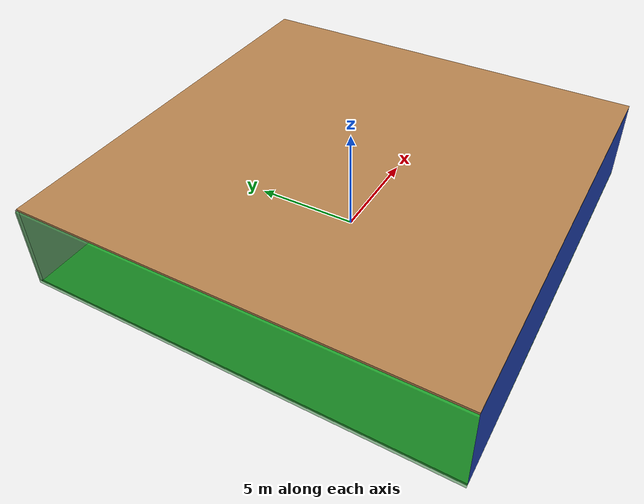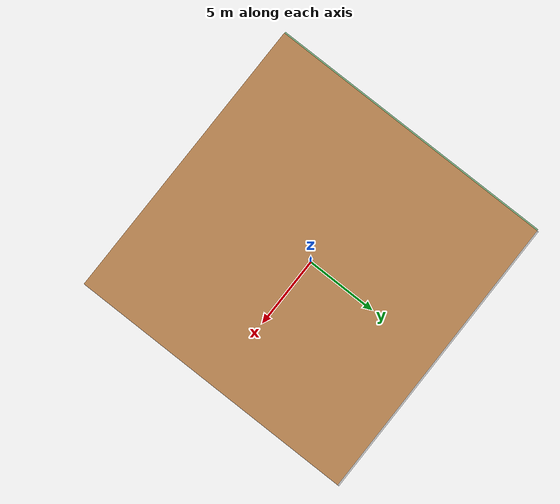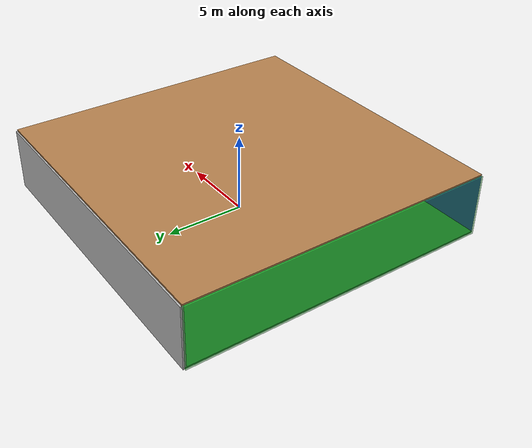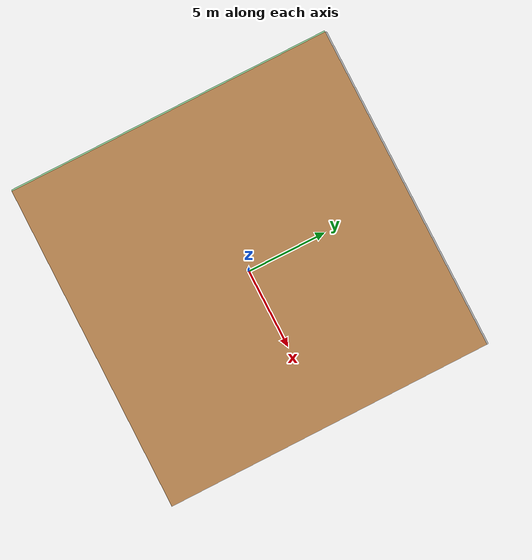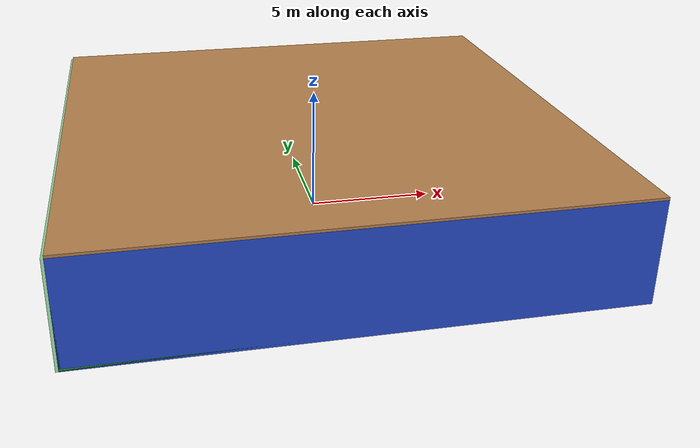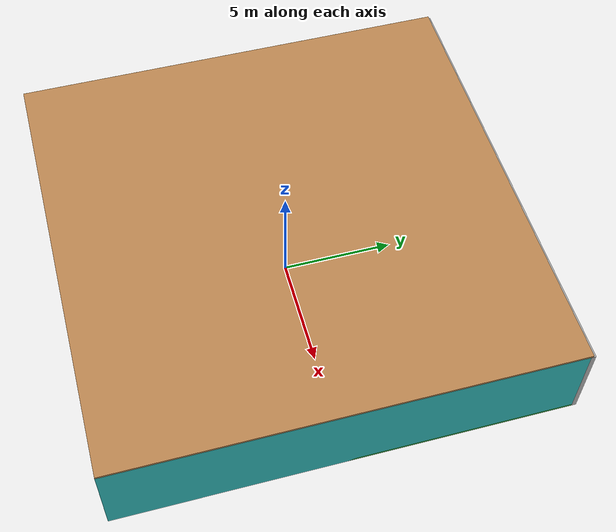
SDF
<sdf version="1.4">
 <world name="default">
  <physics type="ode">
   <max_step_size>0.001</max_step_size>
   <real_time_factor>1</real_time_factor>
   <real_time_update_rate>1000</real_time_update_rate>
   <gravity>0 0 -9.8</gravity>
  </physics>
  <scene><ambient>0.4 0.4 0.4 1</ambient><background>0.7 0.7 0.7 1</background><shadows>1</shadows></scene>
  <model name="Surrounding">
   <static>1</static>
   <link name="Ceiling">
    <collision name="Ceiling_Collision"><geometry><box><size>20 20 0.1</size></box></geometry></collision>
    <visual name="Ceiling_Visual">
     <geometry><box><size>20 20 0.1</size></box></geometry>
     <material>
      <script><uri>file://media/materials/scripts/gazebo.material</uri><name>Gazebo/WoodPallet</name></script>
     </material>
    </visual>
    <pose>0 0 4.05 0 0 0</pose>
   </link>
   <link name="Wall_South">
    <collision name="Wall_South_Collision">
     <geometry><box><size>20 0 4</size></box></geometry>
     <pose>0 0 2 0 -0 0</pose>
    </collision>
    <visual name="Wall_South_Visual">
     <pose>0 0 2 0 -0 0</pose>
     <geometry><box><size>20 0 4</size></box></geometry>
     <material>
      <script><uri>file://media/materials/scripts/gazebo.material</uri><name>Gazebo/Blue</name></script>
     </material>
    </visual>
    <velocity_decay><linear>0</linear><angular>0</angular></velocity_decay>
    <pose>0 -10 0 0 -0 0</pose>
   </link>
   <link name="Wall_East">
    <collision name="Wall_21_Collision">
     <geometry><box><size>20 0 4</size></box></geometry>
     <pose>0 0 2 0 -0 0</pose>
    </collision>
    <visual name="Wall_21_Visual">
     <pose>0 0 2 0 -0 0</pose>
     <geometry><box><size>20 0 4</size></box></geometry>
     <material>
      <script><uri>file://media/materials/scripts/gazebo.material</uri><name>Gazebo/TurquoiseGlow</name></script>
     </material>
    </visual>
    <velocity_decay><linear>0</linear><angular>0</angular></velocity_decay>
    <pose>10 0 0 0 -0 1.5708</pose>
   </link>
   <link name="Wall_North">
    <collision name="Wall_22_Collision">
     <geometry><box><size>20 0.2 4</size></box></geometry>
     <pose>0 0 2 0 -0 0</pose>
    </collision>
    <visual name="Wall_22_Visual">
     <pose>0 0 2 0 -0 0</pose>
     <geometry><box><size>20 0.2 4</size></box></geometry>
     <material>
      <script><uri>file://media/materials/scripts/gazebo.material</uri><name>Gazebo/LightOn</name></script>
     </material>
    </visual>
    <velocity_decay><linear>0</linear><angular>0</angular></velocity_decay>
    <pose>0 10 0 0 -0 0</pose>
   </link>
   <link name="Wall_West">
    <collision name="Wall_23_Collision">
     <geometry><box><size>20 0.2 4</size></box></geometry>
     <pose>0 0 2 0 -0 0</pose>
    </collision>
    <visual name="Wall_23_Visual">
     <pose>0 0 2 0 -0 0</pose>
     <geometry><box><size>20 0.2 4</size></box></geometry>
     <material>
      <script><uri>file://media/materials/scripts/gazebo.material</uri><name>Gazebo/GreenTransparent</name></script>
     </material>
    </visual>
    <velocity_decay><linear>0</linear><angular>0</angular></velocity_decay>
    <pose>-10 0 0 0 0 -1.5708</pose>
   </link>
   <link name="Ground_link">
    <collision name="collision">
     <pose>0 0 .05 0 -0 0</pose>
     <geometry><box><size>20 20 0.1</size></box></geometry>
    </collision>
    <visual name="visual">
     <pose>0 0 .05 0 -0 0</pose>
     <geometry><box><size>20 20 0.1</size></box></geometry>
     <material>
      <script><uri>file://media/materials/scripts/gazebo.material</uri><name>Gazebo/Green</name></script>
     </material>
    </visual>
   </link>
   <static>1</static>
  </model>
  <spherical_coordinates>
   <surface_model>EARTH_WGS84</surface_model>
   <latitude_deg>0</latitude_deg>
   <longitude_deg>0</longitude_deg>
   <elevation>0</elevation>
   <heading_deg>0</heading_deg>
  </spherical_coordinates>
  <light name="lightball_0" type="diffuse">
   <diffuse>0.8 0.8 0.8 1</diffuse>
   <specular>0.2 0.2 0.2 1</specular>
   <attenuation>
    <range>100</range>
    <constant>0.7</constant>
    <linear>0.01</linear>
    <quadratic>0.001</quadratic>
   </attenuation>
   <direction>-0.5 0.1 -0.9</direction>
   <pose>-4.00094960718 0.57420503855 1.16253418057 0 0 0</pose>
  </light>
  <light name="lightball_1" type="diffuse">
   <diffuse>0.8 0.8 0.8 1</diffuse>
   <specular>0.2 0.2 0.2 1</specular>
   <attenuation>
    <range>100</range>
    <constant>0.7</constant>
    <linear>0.01</linear>
    <quadratic>0.001</quadratic>
   </attenuation>
   <direction>-0.5 0.1 -0.9</direction>
   <pose>7.04165842126 -7.11283955069 3.26370181919 0 0 0</pose>
  </light>
  <light name="lightball_2" type="diffuse">
   <diffuse>0.8 0.8 0.8 1</diffuse>
   <specular>0.2 0.2 0.2 1</specular>
   <attenuation>
    <range>100</range>
    <constant>0.7</constant>
    <linear>0.01</linear>
    <quadratic>0.001</quadratic>
   </attenuation>
   <direction>-0.5 0.1 -0.9</direction>
   <pose>9.04880061643 7.9346019445 1.96250124911 0 0 0</pose>
  </light>
  <light name="lightball_3" type="diffuse">
   <diffuse>0.8 0.8 0.8 1</diffuse>
   <specular>0.2 0.2 0.2 1</specular>
   <attenuation>
    <range>100</range>
    <constant>0.7</constant>
    <linear>0.01</linear>
    <quadratic>0.001</quadratic>
   </attenuation>
   <direction>-0.5 0.1 -0.9</direction>
   <pose>-1.79827735562 9.06886296843 3.15354043318 0 0 0</pose>
  </light>
  <light name="lightball_4" type="diffuse">
   <diffuse>0.8 0.8 0.8 1</diffuse>
   <specular>0.2 0.2 0.2 1</specular>
   <attenuation>
    <range>100</range>
    <constant>0.7</constant>
    <linear>0.01</linear>
    <quadratic>0.001</quadratic>
   </attenuation>
   <direction>-0.5 0.1 -0.9</direction>
   <pose>-4.17694850095 8.94716784101 2.62140646844 0 0 0</pose>
  </light>
  <light name="lightball_5" type="diffuse">
   <diffuse>0.8 0.8 0.8 1</diffuse>
   <specular>0.2 0.2 0.2 1</specular>
   <attenuation>
    <range>100</range>
    <constant>0.7</constant>
    <linear>0.01</linear>
    <quadratic>0.001</quadratic>
   </attenuation>
   <direction>-0.5 0.1 -0.9</direction>
   <pose>8.6023108852 3.5212519393 1.25485949038 0 0 0</pose>
  </light>
  <light name="lightball_6" type="diffuse">
   <diffuse>0.8 0.8 0.8 1</diffuse>
   <specular>0.2 0.2 0.2 1</specular>
   <attenuation>
    <range>100</range>
    <constant>0.7</constant>
    <linear>0.01</linear>
    <quadratic>0.001</quadratic>
   </attenuation>
   <direction>-0.5 0.1 -0.9</direction>
   <pose>-3.19792377577 -5.34005396461 1.12713113673 0 0 0</pose>
  </light>
  <light name="lightball_7" type="diffuse">
   <diffuse>0.8 0.8 0.8 1</diffuse>
   <specular>0.2 0.2 0.2 1</specular>
   <attenuation>
    <range>100</range>
    <constant>0.7</constant>
    <linear>0.01</linear>
    <quadratic>0.001</quadratic>
   </attenuation>
   <direction>-0.5 0.1 -0.9</direction>
   <pose>3.23635464199 -3.46448581719 1.01793727562 0 0 0</pose>
  </light>
  <light name="lightball_8" type="diffuse">
   <diffuse>0.8 0.8 0.8 1</diffuse>
   <specular>0.2 0.2 0.2 1</specular>
   <attenuation>
    <range>100</range>
    <constant>0.7</constant>
    <linear>0.01</linear>
    <quadratic>0.001</quadratic>
   </attenuation>
   <direction>-0.5 0.1 -0.9</direction>
   <pose>-4.66126032197 9.48755966186 1.69586489256 0 0 0</pose>
  </light>
  <include>
   <uri>model://construction_cone</uri>
   <pose>-5.02281337886 -2.1950969539 0 0 0 0.485962492224</pose>
  </include>
  <include>
   <uri>model://construction_cone</uri>
   <pose>-4.33598220446 3.99328416468 0 0 0 2.66785386315</pose>
  </include>
  <include><uri>model://table</uri><pose>1.09274103521 -1.10297003009 0 0 0 2.58737188548</pose></include>
  <include>
   <uri>model://textured_shapes</uri>
   <pose>3.7518063501 7.47046464367 0 0 0 0.793395418599</pose>
  </include>
 </world>
</sdf>

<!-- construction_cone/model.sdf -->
<sdf version="1.5">
  <model name="Construction Cone">
    <link name="link">
      <collision name="collision">
        <geometry>
          <mesh>
            <scale>10 10 10</scale>
            <uri>file://isr-testbed/construction_cone/meshes/construction_cone.dae</uri>
          </mesh>
        </geometry>
      </collision>
      <visual name="visual">
        <geometry>
          <mesh>
            <scale>10 10 10</scale>
            <uri>file://isr-testbed/construction_cone/meshes/construction_cone.dae</uri>
          </mesh>
        </geometry>
      </visual>
    </link>
  </model>
</sdf>

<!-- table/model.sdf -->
<sdf version="1.5">
  <model name="table">
    <static>true</static>
    <link name="link">
      <collision name="surface">
        <pose>0 0 1.0 0 0 0</pose>
        <geometry>
          <box>
            <size>1.5 0.8 0.03</size>
          </box>
        </geometry>
        <surface>
          <friction>
            <ode>
              <mu>0.6</mu>
              <mu2>0.6</mu2>
            </ode>
          </friction>
        </surface>
      </collision>
      <visual name="visual1">
        <pose>0 0 1.0 0 0 0</pose>
        <geometry>
          <box>
            <size>1.5 0.8 0.03</size>
          </box>
        </geometry>
        <material>
          <script>
            <uri>model://media/materials/scripts/gazebo.material</uri>
            <name>Gazebo/Wood</name>
          </script>
        </material>
      </visual>
      <collision name="front_left_leg">
        <pose>0.68 0.38 0.5 0 0 0</pose>
        <geometry>
          <cylinder>
            <radius>0.02</radius>
            <length>1.0</length>
          </cylinder>
        </geometry>
      </collision>
      <visual name="front_left_leg">
        <pose>0.68 0.38 0.5 0 0 0</pose>
        <geometry>
          <cylinder>
            <radius>0.02</radius>
            <length>1.0</length>
          </cylinder>
        </geometry>
        <material>
          <script>
            <uri>model://media/materials/scripts/gazebo.material</uri>
            <name>Gazebo/Grey</name>
          </script>
        </material>
      </visual>
      <collision name="front_right_leg">
        <pose>0.68 -0.38 0.5 0 0 0</pose>
        <geometry>
          <cylinder>
            <radius>0.02</radius>
            <length>1.0</length>
          </cylinder>
        </geometry>
      </collision>
      <visual name="front_right_leg">
        <pose>0.68 -0.38 0.5 0 0 0</pose>
        <geometry>
          <cylinder>
            <radius>0.02</radius>
            <length>1.0</length>
          </cylinder>
        </geometry>
        <material>
          <script>
            <uri>model://media/materials/scripts/gazebo.material</uri>
            <name>Gazebo/Grey</name>
          </script>
        </material>
      </visual>
      <collision name="back_right_leg">
        <pose>-0.68 -0.38 0.5 0 0 0</pose>
        <geometry>
          <cylinder>
            <radius>0.02</radius>
            <length>1.0</length>
          </cylinder>
        </geometry>
      </collision>
      <visual name="back_right_leg">
        <pose>-0.68 -0.38 0.5 0 0 0</pose>
        <geometry>
          <cylinder>
            <radius>0.02</radius>
            <length>1.0</length>
          </cylinder>
        </geometry>
        <material>
          <script>
            <uri>model://media/materials/scripts/gazebo.material</uri>
            <name>Gazebo/Grey</name>
          </script>
        </material>
      </visual>
      <collision name="back_left_leg">
        <pose>-0.68 0.38 0.5 0 0 0</pose>
        <geometry>
          <cylinder>
            <radius>0.02</radius>
            <length>1.0</length>
          </cylinder>
        </geometry>
      </collision>
      <visual name="back_left_leg">
        <pose>-0.68 0.38 0.5 0 0 0</pose>
        <geometry>
          <cylinder>
            <radius>0.02</radius>
            <length>1.0</length>
          </cylinder>
        </geometry>
        <material>
          <script>
            <uri>model://media/materials/scripts/gazebo.material</uri>
            <name>Gazebo/Grey</name>
          </script>
        </material>
      </visual>
    </link>
  </model>
</sdf>

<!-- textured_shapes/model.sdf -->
<sdf version="1.6">
  <model name="textured_shapes">
    <pose>0 0 0.5 0 0 0</pose>
    <link name="box">
      <pose>0 -1.5 0 0 0 0</pose>
      <collision name="collision">
        <geometry>
          <box>
            <size>1 1 1</size>
          </box>
        </geometry>
      </collision>
      <visual name="visual">
        <geometry>
          <box>
            <size>1 1 1</size>
          </box>
        </geometry>
        <material>
          <script>
            <uri>model://../model_source/models/textured_shapes/materials/scripts</uri>
            <uri>model://../model_source/models/textured_shapes/materials/textures</uri>
            <name>TexturedShape/Squares</name>
          </script>
        </material>
      </visual>
    </link>
    <link name="sphere">
      <collision name="collision">
        <geometry>
          <sphere>
            <radius>0.5</radius>
          </sphere>
        </geometry>
      </collision>
      <visual name="visual">
        <geometry>
          <sphere>
            <radius>0.5</radius>
          </sphere>
        </geometry>
        <material>
          <script>
            <uri>model://../model_source/models/textured_shapes/materials/scripts</uri>
            <uri>model://../model_source/models/textured_shapes/materials/textures</uri>
            <name>TexturedShape/Squares</name>
          </script>
        </material>
      </visual>
    </link>
    <link name="cylinder">
      <pose>0 1.5 0 0 0 0</pose>
      <collision name="collision">
        <geometry>
          <cylinder>
            <radius>0.5</radius>
            <length>1</length>
          </cylinder>
        </geometry>
      </collision>
      <visual name="visual">
        <geometry>
          <cylinder>
            <radius>0.5</radius>
            <length>1</length>
          </cylinder>
        </geometry>
        <material>
          <script>
            <uri>model://../model_source/models/textured_shapes/materials/scripts</uri>
            <uri>model://../model_source/models/textured_shapes/materials/textures</uri>
            <name>TexturedShape/Squares</name>
          </script>
        </material>
      </visual>
    </link>
  </model>
</sdf>
